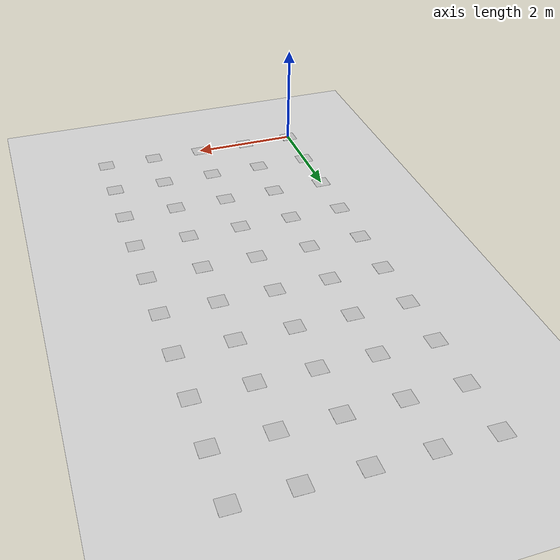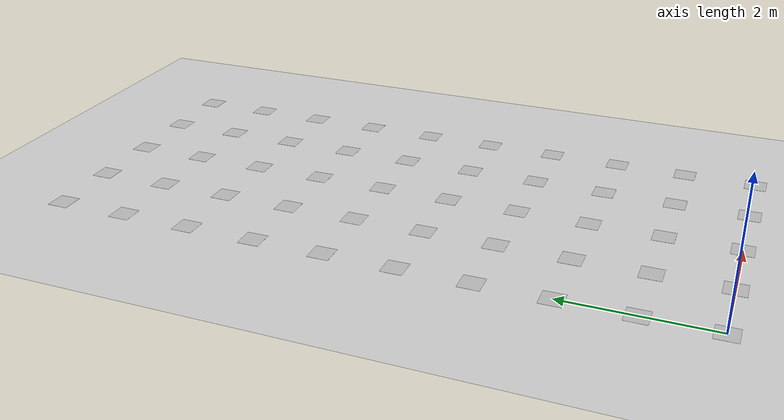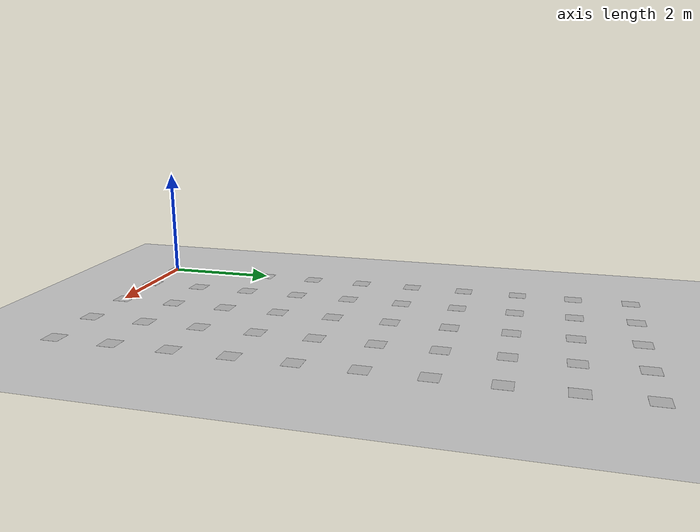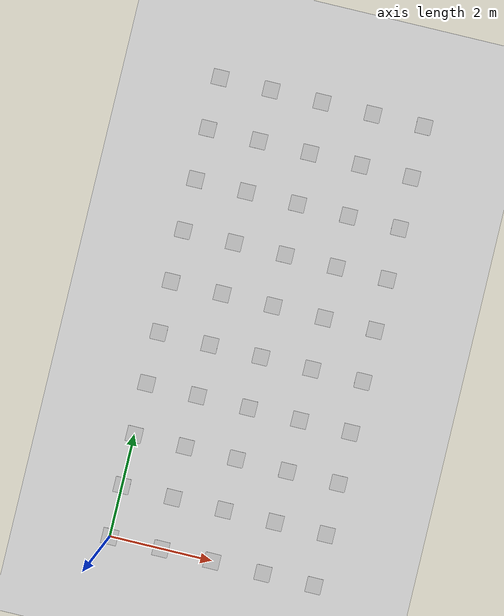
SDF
<sdf version="1.6">
 <world name="aruco_field">
  <include><uri>model://sun</uri></include>
  <include><uri>model://ground_plane</uri></include>
  <model name="aruco_marker_000">
   <static>true</static>
   <pose>0.0 0.0 0.001 0 0 0</pose>
   <link name="link">
    <visual name="visual">
     <geometry><box><size>0.3 0.3 0.001</size></box></geometry>
     <material>
      <script>
       <uri>model://aruco_models/materials/scripts</uri>
       <uri>model://aruco_models/materials/textures</uri>
       <name>Aruco/Material_000</name>
      </script>
     </material>
    </visual>
    <collision name="collision"><geometry><box><size>0.3 0.3 0.001</size></box></geometry></collision>
   </link>
  </model>
  <model name="aruco_marker_001">
   <static>true</static>
   <pose>1.0 0.0 0.001 0 0 0</pose>
   <link name="link">
    <visual name="visual">
     <geometry><box><size>0.3 0.3 0.001</size></box></geometry>
     <material>
      <script>
       <uri>model://aruco_models/materials/scripts</uri>
       <uri>model://aruco_models/materials/textures</uri>
       <name>Aruco/Material_001</name>
      </script>
     </material>
    </visual>
    <collision name="collision"><geometry><box><size>0.3 0.3 0.001</size></box></geometry></collision>
   </link>
  </model>
  <model name="aruco_marker_002">
   <static>true</static>
   <pose>2.0 0.0 0.001 0 0 0</pose>
   <link name="link">
    <visual name="visual">
     <geometry><box><size>0.3 0.3 0.001</size></box></geometry>
     <material>
      <script>
       <uri>model://aruco_models/materials/scripts</uri>
       <uri>model://aruco_models/materials/textures</uri>
       <name>Aruco/Material_002</name>
      </script>
     </material>
    </visual>
    <collision name="collision"><geometry><box><size>0.3 0.3 0.001</size></box></geometry></collision>
   </link>
  </model>
  <model name="aruco_marker_003">
   <static>true</static>
   <pose>3.0 0.0 0.001 0 0 0</pose>
   <link name="link">
    <visual name="visual">
     <geometry><box><size>0.3 0.3 0.001</size></box></geometry>
     <material>
      <script>
       <uri>model://aruco_models/materials/scripts</uri>
       <uri>model://aruco_models/materials/textures</uri>
       <name>Aruco/Material_003</name>
      </script>
     </material>
    </visual>
    <collision name="collision"><geometry><box><size>0.3 0.3 0.001</size></box></geometry></collision>
   </link>
  </model>
  <model name="aruco_marker_004">
   <static>true</static>
   <pose>4.0 0.0 0.001 0 0 0</pose>
   <link name="link">
    <visual name="visual">
     <geometry><box><size>0.3 0.3 0.001</size></box></geometry>
     <material>
      <script>
       <uri>model://aruco_models/materials/scripts</uri>
       <uri>model://aruco_models/materials/textures</uri>
       <name>Aruco/Material_004</name>
      </script>
     </material>
    </visual>
    <collision name="collision"><geometry><box><size>0.3 0.3 0.001</size></box></geometry></collision>
   </link>
  </model>
  <model name="aruco_marker_010">
   <static>true</static>
   <pose>0.0 1.0 0.001 0 0 0</pose>
   <link name="link">
    <visual name="visual">
     <geometry><box><size>0.3 0.3 0.001</size></box></geometry>
     <material>
      <script>
       <uri>model://aruco_models/materials/scripts</uri>
       <uri>model://aruco_models/materials/textures</uri>
       <name>Aruco/Material_010</name>
      </script>
     </material>
    </visual>
    <collision name="collision"><geometry><box><size>0.3 0.3 0.001</size></box></geometry></collision>
   </link>
  </model>
  <model name="aruco_marker_011">
   <static>true</static>
   <pose>1.0 1.0 0.001 0 0 0</pose>
   <link name="link">
    <visual name="visual">
     <geometry><box><size>0.3 0.3 0.001</size></box></geometry>
     <material>
      <script>
       <uri>model://aruco_models/materials/scripts</uri>
       <uri>model://aruco_models/materials/textures</uri>
       <name>Aruco/Material_011</name>
      </script>
     </material>
    </visual>
    <collision name="collision"><geometry><box><size>0.3 0.3 0.001</size></box></geometry></collision>
   </link>
  </model>
  <model name="aruco_marker_012">
   <static>true</static>
   <pose>2.0 1.0 0.001 0 0 0</pose>
   <link name="link">
    <visual name="visual">
     <geometry><box><size>0.3 0.3 0.001</size></box></geometry>
     <material>
      <script>
       <uri>model://aruco_models/materials/scripts</uri>
       <uri>model://aruco_models/materials/textures</uri>
       <name>Aruco/Material_012</name>
      </script>
     </material>
    </visual>
    <collision name="collision"><geometry><box><size>0.3 0.3 0.001</size></box></geometry></collision>
   </link>
  </model>
  <model name="aruco_marker_013">
   <static>true</static>
   <pose>3.0 1.0 0.001 0 0 0</pose>
   <link name="link">
    <visual name="visual">
     <geometry><box><size>0.3 0.3 0.001</size></box></geometry>
     <material>
      <script>
       <uri>model://aruco_models/materials/scripts</uri>
       <uri>model://aruco_models/materials/textures</uri>
       <name>Aruco/Material_013</name>
      </script>
     </material>
    </visual>
    <collision name="collision"><geometry><box><size>0.3 0.3 0.001</size></box></geometry></collision>
   </link>
  </model>
  <model name="aruco_marker_014">
   <static>true</static>
   <pose>4.0 1.0 0.001 0 0 0</pose>
   <link name="link">
    <visual name="visual">
     <geometry><box><size>0.3 0.3 0.001</size></box></geometry>
     <material>
      <script>
       <uri>model://aruco_models/materials/scripts</uri>
       <uri>model://aruco_models/materials/textures</uri>
       <name>Aruco/Material_014</name>
      </script>
     </material>
    </visual>
    <collision name="collision"><geometry><box><size>0.3 0.3 0.001</size></box></geometry></collision>
   </link>
  </model>
  <model name="aruco_marker_020">
   <static>true</static>
   <pose>0.0 2.0 0.001 0 0 0</pose>
   <link name="link">
    <visual name="visual">
     <geometry><box><size>0.3 0.3 0.001</size></box></geometry>
     <material>
      <script>
       <uri>model://aruco_models/materials/scripts</uri>
       <uri>model://aruco_models/materials/textures</uri>
       <name>Aruco/Material_020</name>
      </script>
     </material>
    </visual>
    <collision name="collision"><geometry><box><size>0.3 0.3 0.001</size></box></geometry></collision>
   </link>
  </model>
  <model name="aruco_marker_021">
   <static>true</static>
   <pose>1.0 2.0 0.001 0 0 0</pose>
   <link name="link">
    <visual name="visual">
     <geometry><box><size>0.3 0.3 0.001</size></box></geometry>
     <material>
      <script>
       <uri>model://aruco_models/materials/scripts</uri>
       <uri>model://aruco_models/materials/textures</uri>
       <name>Aruco/Material_021</name>
      </script>
     </material>
    </visual>
    <collision name="collision"><geometry><box><size>0.3 0.3 0.001</size></box></geometry></collision>
   </link>
  </model>
  <model name="aruco_marker_022">
   <static>true</static>
   <pose>2.0 2.0 0.001 0 0 0</pose>
   <link name="link">
    <visual name="visual">
     <geometry><box><size>0.3 0.3 0.001</size></box></geometry>
     <material>
      <script>
       <uri>model://aruco_models/materials/scripts</uri>
       <uri>model://aruco_models/materials/textures</uri>
       <name>Aruco/Material_022</name>
      </script>
     </material>
    </visual>
    <collision name="collision"><geometry><box><size>0.3 0.3 0.001</size></box></geometry></collision>
   </link>
  </model>
  <model name="aruco_marker_023">
   <static>true</static>
   <pose>3.0 2.0 0.001 0 0 0</pose>
   <link name="link">
    <visual name="visual">
     <geometry><box><size>0.3 0.3 0.001</size></box></geometry>
     <material>
      <script>
       <uri>model://aruco_models/materials/scripts</uri>
       <uri>model://aruco_models/materials/textures</uri>
       <name>Aruco/Material_023</name>
      </script>
     </material>
    </visual>
    <collision name="collision"><geometry><box><size>0.3 0.3 0.001</size></box></geometry></collision>
   </link>
  </model>
  <model name="aruco_marker_024">
   <static>true</static>
   <pose>4.0 2.0 0.001 0 0 0</pose>
   <link name="link">
    <visual name="visual">
     <geometry><box><size>0.3 0.3 0.001</size></box></geometry>
     <material>
      <script>
       <uri>model://aruco_models/materials/scripts</uri>
       <uri>model://aruco_models/materials/textures</uri>
       <name>Aruco/Material_024</name>
      </script>
     </material>
    </visual>
    <collision name="collision"><geometry><box><size>0.3 0.3 0.001</size></box></geometry></collision>
   </link>
  </model>
  <model name="aruco_marker_030">
   <static>true</static>
   <pose>0.0 3.0 0.001 0 0 0</pose>
   <link name="link">
    <visual name="visual">
     <geometry><box><size>0.3 0.3 0.001</size></box></geometry>
     <material>
      <script>
       <uri>model://aruco_models/materials/scripts</uri>
       <uri>model://aruco_models/materials/textures</uri>
       <name>Aruco/Material_030</name>
      </script>
     </material>
    </visual>
    <collision name="collision"><geometry><box><size>0.3 0.3 0.001</size></box></geometry></collision>
   </link>
  </model>
  <model name="aruco_marker_031">
   <static>true</static>
   <pose>1.0 3.0 0.001 0 0 0</pose>
   <link name="link">
    <visual name="visual">
     <geometry><box><size>0.3 0.3 0.001</size></box></geometry>
     <material>
      <script>
       <uri>model://aruco_models/materials/scripts</uri>
       <uri>model://aruco_models/materials/textures</uri>
       <name>Aruco/Material_031</name>
      </script>
     </material>
    </visual>
    <collision name="collision"><geometry><box><size>0.3 0.3 0.001</size></box></geometry></collision>
   </link>
  </model>
  <model name="aruco_marker_032">
   <static>true</static>
   <pose>2.0 3.0 0.001 0 0 0</pose>
   <link name="link">
    <visual name="visual">
     <geometry><box><size>0.3 0.3 0.001</size></box></geometry>
     <material>
      <script>
       <uri>model://aruco_models/materials/scripts</uri>
       <uri>model://aruco_models/materials/textures</uri>
       <name>Aruco/Material_032</name>
      </script>
     </material>
    </visual>
    <collision name="collision"><geometry><box><size>0.3 0.3 0.001</size></box></geometry></collision>
   </link>
  </model>
  <model name="aruco_marker_033">
   <static>true</static>
   <pose>3.0 3.0 0.001 0 0 0</pose>
   <link name="link">
    <visual name="visual">
     <geometry><box><size>0.3 0.3 0.001</size></box></geometry>
     <material>
      <script>
       <uri>model://aruco_models/materials/scripts</uri>
       <uri>model://aruco_models/materials/textures</uri>
       <name>Aruco/Material_033</name>
      </script>
     </material>
    </visual>
    <collision name="collision"><geometry><box><size>0.3 0.3 0.001</size></box></geometry></collision>
   </link>
  </model>
  <model name="aruco_marker_034">
   <static>true</static>
   <pose>4.0 3.0 0.001 0 0 0</pose>
   <link name="link">
    <visual name="visual">
     <geometry><box><size>0.3 0.3 0.001</size></box></geometry>
     <material>
      <script>
       <uri>model://aruco_models/materials/scripts</uri>
       <uri>model://aruco_models/materials/textures</uri>
       <name>Aruco/Material_034</name>
      </script>
     </material>
    </visual>
    <collision name="collision"><geometry><box><size>0.3 0.3 0.001</size></box></geometry></collision>
   </link>
  </model>
  <model name="aruco_marker_040">
   <static>true</static>
   <pose>0.0 4.0 0.001 0 0 0</pose>
   <link name="link">
    <visual name="visual">
     <geometry><box><size>0.3 0.3 0.001</size></box></geometry>
     <material>
      <script>
       <uri>model://aruco_models/materials/scripts</uri>
       <uri>model://aruco_models/materials/textures</uri>
       <name>Aruco/Material_040</name>
      </script>
     </material>
    </visual>
    <collision name="collision"><geometry><box><size>0.3 0.3 0.001</size></box></geometry></collision>
   </link>
  </model>
  <model name="aruco_marker_041">
   <static>true</static>
   <pose>1.0 4.0 0.001 0 0 0</pose>
   <link name="link">
    <visual name="visual">
     <geometry><box><size>0.3 0.3 0.001</size></box></geometry>
     <material>
      <script>
       <uri>model://aruco_models/materials/scripts</uri>
       <uri>model://aruco_models/materials/textures</uri>
       <name>Aruco/Material_041</name>
      </script>
     </material>
    </visual>
    <collision name="collision"><geometry><box><size>0.3 0.3 0.001</size></box></geometry></collision>
   </link>
  </model>
  <model name="aruco_marker_042">
   <static>true</static>
   <pose>2.0 4.0 0.001 0 0 0</pose>
   <link name="link">
    <visual name="visual">
     <geometry><box><size>0.3 0.3 0.001</size></box></geometry>
     <material>
      <script>
       <uri>model://aruco_models/materials/scripts</uri>
       <uri>model://aruco_models/materials/textures</uri>
       <name>Aruco/Material_042</name>
      </script>
     </material>
    </visual>
    <collision name="collision"><geometry><box><size>0.3 0.3 0.001</size></box></geometry></collision>
   </link>
  </model>
  <model name="aruco_marker_043">
   <static>true</static>
   <pose>3.0 4.0 0.001 0 0 0</pose>
   <link name="link">
    <visual name="visual">
     <geometry><box><size>0.3 0.3 0.001</size></box></geometry>
     <material>
      <script>
       <uri>model://aruco_models/materials/scripts</uri>
       <uri>model://aruco_models/materials/textures</uri>
       <name>Aruco/Material_043</name>
      </script>
     </material>
    </visual>
    <collision name="collision"><geometry><box><size>0.3 0.3 0.001</size></box></geometry></collision>
   </link>
  </model>
  <model name="aruco_marker_044">
   <static>true</static>
   <pose>4.0 4.0 0.001 0 0 0</pose>
   <link name="link">
    <visual name="visual">
     <geometry><box><size>0.3 0.3 0.001</size></box></geometry>
     <material>
      <script>
       <uri>model://aruco_models/materials/scripts</uri>
       <uri>model://aruco_models/materials/textures</uri>
       <name>Aruco/Material_044</name>
      </script>
     </material>
    </visual>
    <collision name="collision"><geometry><box><size>0.3 0.3 0.001</size></box></geometry></collision>
   </link>
  </model>
  <model name="aruco_marker_050">
   <static>true</static>
   <pose>0.0 5.0 0.001 0 0 0</pose>
   <link name="link">
    <visual name="visual">
     <geometry><box><size>0.3 0.3 0.001</size></box></geometry>
     <material>
      <script>
       <uri>model://aruco_models/materials/scripts</uri>
       <uri>model://aruco_models/materials/textures</uri>
       <name>Aruco/Material_050</name>
      </script>
     </material>
    </visual>
    <collision name="collision"><geometry><box><size>0.3 0.3 0.001</size></box></geometry></collision>
   </link>
  </model>
  <model name="aruco_marker_051">
   <static>true</static>
   <pose>1.0 5.0 0.001 0 0 0</pose>
   <link name="link">
    <visual name="visual">
     <geometry><box><size>0.3 0.3 0.001</size></box></geometry>
     <material>
      <script>
       <uri>model://aruco_models/materials/scripts</uri>
       <uri>model://aruco_models/materials/textures</uri>
       <name>Aruco/Material_051</name>
      </script>
     </material>
    </visual>
    <collision name="collision"><geometry><box><size>0.3 0.3 0.001</size></box></geometry></collision>
   </link>
  </model>
  <model name="aruco_marker_052">
   <static>true</static>
   <pose>2.0 5.0 0.001 0 0 0</pose>
   <link name="link">
    <visual name="visual">
     <geometry><box><size>0.3 0.3 0.001</size></box></geometry>
     <material>
      <script>
       <uri>model://aruco_models/materials/scripts</uri>
       <uri>model://aruco_models/materials/textures</uri>
       <name>Aruco/Material_052</name>
      </script>
     </material>
    </visual>
    <collision name="collision"><geometry><box><size>0.3 0.3 0.001</size></box></geometry></collision>
   </link>
  </model>
  <model name="aruco_marker_053">
   <static>true</static>
   <pose>3.0 5.0 0.001 0 0 0</pose>
   <link name="link">
    <visual name="visual">
     <geometry><box><size>0.3 0.3 0.001</size></box></geometry>
     <material>
      <script>
       <uri>model://aruco_models/materials/scripts</uri>
       <uri>model://aruco_models/materials/textures</uri>
       <name>Aruco/Material_053</name>
      </script>
     </material>
    </visual>
    <collision name="collision"><geometry><box><size>0.3 0.3 0.001</size></box></geometry></collision>
   </link>
  </model>
  <model name="aruco_marker_054">
   <static>true</static>
   <pose>4.0 5.0 0.001 0 0 0</pose>
   <link name="link">
    <visual name="visual">
     <geometry><box><size>0.3 0.3 0.001</size></box></geometry>
     <material>
      <script>
       <uri>model://aruco_models/materials/scripts</uri>
       <uri>model://aruco_models/materials/textures</uri>
       <name>Aruco/Material_054</name>
      </script>
     </material>
    </visual>
    <collision name="collision"><geometry><box><size>0.3 0.3 0.001</size></box></geometry></collision>
   </link>
  </model>
  <model name="aruco_marker_060">
   <static>true</static>
   <pose>0.0 6.0 0.001 0 0 0</pose>
   <link name="link">
    <visual name="visual">
     <geometry><box><size>0.3 0.3 0.001</size></box></geometry>
     <material>
      <script>
       <uri>model://aruco_models/materials/scripts</uri>
       <uri>model://aruco_models/materials/textures</uri>
       <name>Aruco/Material_060</name>
      </script>
     </material>
    </visual>
    <collision name="collision"><geometry><box><size>0.3 0.3 0.001</size></box></geometry></collision>
   </link>
  </model>
  <model name="aruco_marker_061">
   <static>true</static>
   <pose>1.0 6.0 0.001 0 0 0</pose>
   <link name="link">
    <visual name="visual">
     <geometry><box><size>0.3 0.3 0.001</size></box></geometry>
     <material>
      <script>
       <uri>model://aruco_models/materials/scripts</uri>
       <uri>model://aruco_models/materials/textures</uri>
       <name>Aruco/Material_061</name>
      </script>
     </material>
    </visual>
    <collision name="collision"><geometry><box><size>0.3 0.3 0.001</size></box></geometry></collision>
   </link>
  </model>
  <model name="aruco_marker_062">
   <static>true</static>
   <pose>2.0 6.0 0.001 0 0 0</pose>
   <link name="link">
    <visual name="visual">
     <geometry><box><size>0.3 0.3 0.001</size></box></geometry>
     <material>
      <script>
       <uri>model://aruco_models/materials/scripts</uri>
       <uri>model://aruco_models/materials/textures</uri>
       <name>Aruco/Material_062</name>
      </script>
     </material>
    </visual>
    <collision name="collision"><geometry><box><size>0.3 0.3 0.001</size></box></geometry></collision>
   </link>
  </model>
  <model name="aruco_marker_063">
   <static>true</static>
   <pose>3.0 6.0 0.001 0 0 0</pose>
   <link name="link">
    <visual name="visual">
     <geometry><box><size>0.3 0.3 0.001</size></box></geometry>
     <material>
      <script>
       <uri>model://aruco_models/materials/scripts</uri>
       <uri>model://aruco_models/materials/textures</uri>
       <name>Aruco/Material_063</name>
      </script>
     </material>
    </visual>
    <collision name="collision"><geometry><box><size>0.3 0.3 0.001</size></box></geometry></collision>
   </link>
  </model>
  <model name="aruco_marker_064">
   <static>true</static>
   <pose>4.0 6.0 0.001 0 0 0</pose>
   <link name="link">
    <visual name="visual">
     <geometry><box><size>0.3 0.3 0.001</size></box></geometry>
     <material>
      <script>
       <uri>model://aruco_models/materials/scripts</uri>
       <uri>model://aruco_models/materials/textures</uri>
       <name>Aruco/Material_064</name>
      </script>
     </material>
    </visual>
    <collision name="collision"><geometry><box><size>0.3 0.3 0.001</size></box></geometry></collision>
   </link>
  </model>
  <model name="aruco_marker_070">
   <static>true</static>
   <pose>0.0 7.0 0.001 0 0 0</pose>
   <link name="link">
    <visual name="visual">
     <geometry><box><size>0.3 0.3 0.001</size></box></geometry>
     <material>
      <script>
       <uri>model://aruco_models/materials/scripts</uri>
       <uri>model://aruco_models/materials/textures</uri>
       <name>Aruco/Material_070</name>
      </script>
     </material>
    </visual>
    <collision name="collision"><geometry><box><size>0.3 0.3 0.001</size></box></geometry></collision>
   </link>
  </model>
  <model name="aruco_marker_071">
   <static>true</static>
   <pose>1.0 7.0 0.001 0 0 0</pose>
   <link name="link">
    <visual name="visual">
     <geometry><box><size>0.3 0.3 0.001</size></box></geometry>
     <material>
      <script>
       <uri>model://aruco_models/materials/scripts</uri>
       <uri>model://aruco_models/materials/textures</uri>
       <name>Aruco/Material_071</name>
      </script>
     </material>
    </visual>
    <collision name="collision"><geometry><box><size>0.3 0.3 0.001</size></box></geometry></collision>
   </link>
  </model>
  <model name="aruco_marker_072">
   <static>true</static>
   <pose>2.0 7.0 0.001 0 0 0</pose>
   <link name="link">
    <visual name="visual">
     <geometry><box><size>0.3 0.3 0.001</size></box></geometry>
     <material>
      <script>
       <uri>model://aruco_models/materials/scripts</uri>
       <uri>model://aruco_models/materials/textures</uri>
       <name>Aruco/Material_072</name>
      </script>
     </material>
    </visual>
    <collision name="collision"><geometry><box><size>0.3 0.3 0.001</size></box></geometry></collision>
   </link>
  </model>
  <model name="aruco_marker_073">
   <static>true</static>
   <pose>3.0 7.0 0.001 0 0 0</pose>
   <link name="link">
    <visual name="visual">
     <geometry><box><size>0.3 0.3 0.001</size></box></geometry>
     <material>
      <script>
       <uri>model://aruco_models/materials/scripts</uri>
       <uri>model://aruco_models/materials/textures</uri>
       <name>Aruco/Material_073</name>
      </script>
     </material>
    </visual>
    <collision name="collision"><geometry><box><size>0.3 0.3 0.001</size></box></geometry></collision>
   </link>
  </model>
  <model name="aruco_marker_074">
   <static>true</static>
   <pose>4.0 7.0 0.001 0 0 0</pose>
   <link name="link">
    <visual name="visual">
     <geometry><box><size>0.3 0.3 0.001</size></box></geometry>
     <material>
      <script>
       <uri>model://aruco_models/materials/scripts</uri>
       <uri>model://aruco_models/materials/textures</uri>
       <name>Aruco/Material_074</name>
      </script>
     </material>
    </visual>
    <collision name="collision"><geometry><box><size>0.3 0.3 0.001</size></box></geometry></collision>
   </link>
  </model>
  <model name="aruco_marker_080">
   <static>true</static>
   <pose>0.0 8.0 0.001 0 0 0</pose>
   <link name="link">
    <visual name="visual">
     <geometry><box><size>0.3 0.3 0.001</size></box></geometry>
     <material>
      <script>
       <uri>model://aruco_models/materials/scripts</uri>
       <uri>model://aruco_models/materials/textures</uri>
       <name>Aruco/Material_080</name>
      </script>
     </material>
    </visual>
    <collision name="collision"><geometry><box><size>0.3 0.3 0.001</size></box></geometry></collision>
   </link>
  </model>
  <model name="aruco_marker_081">
   <static>true</static>
   <pose>1.0 8.0 0.001 0 0 0</pose>
   <link name="link">
    <visual name="visual">
     <geometry><box><size>0.3 0.3 0.001</size></box></geometry>
     <material>
      <script>
       <uri>model://aruco_models/materials/scripts</uri>
       <uri>model://aruco_models/materials/textures</uri>
       <name>Aruco/Material_081</name>
      </script>
     </material>
    </visual>
    <collision name="collision"><geometry><box><size>0.3 0.3 0.001</size></box></geometry></collision>
   </link>
  </model>
  <model name="aruco_marker_082">
   <static>true</static>
   <pose>2.0 8.0 0.001 0 0 0</pose>
   <link name="link">
    <visual name="visual">
     <geometry><box><size>0.3 0.3 0.001</size></box></geometry>
     <material>
      <script>
       <uri>model://aruco_models/materials/scripts</uri>
       <uri>model://aruco_models/materials/textures</uri>
       <name>Aruco/Material_082</name>
      </script>
     </material>
    </visual>
    <collision name="collision"><geometry><box><size>0.3 0.3 0.001</size></box></geometry></collision>
   </link>
  </model>
  <model name="aruco_marker_083">
   <static>true</static>
   <pose>3.0 8.0 0.001 0 0 0</pose>
   <link name="link">
    <visual name="visual">
     <geometry><box><size>0.3 0.3 0.001</size></box></geometry>
     <material>
      <script>
       <uri>model://aruco_models/materials/scripts</uri>
       <uri>model://aruco_models/materials/textures</uri>
       <name>Aruco/Material_083</name>
      </script>
     </material>
    </visual>
    <collision name="collision"><geometry><box><size>0.3 0.3 0.001</size></box></geometry></collision>
   </link>
  </model>
  <model name="aruco_marker_084">
   <static>true</static>
   <pose>4.0 8.0 0.001 0 0 0</pose>
   <link name="link">
    <visual name="visual">
     <geometry><box><size>0.3 0.3 0.001</size></box></geometry>
     <material>
      <script>
       <uri>model://aruco_models/materials/scripts</uri>
       <uri>model://aruco_models/materials/textures</uri>
       <name>Aruco/Material_084</name>
      </script>
     </material>
    </visual>
    <collision name="collision"><geometry><box><size>0.3 0.3 0.001</size></box></geometry></collision>
   </link>
  </model>
  <model name="aruco_marker_090">
   <static>true</static>
   <pose>0.0 9.0 0.001 0 0 0</pose>
   <link name="link">
    <visual name="visual">
     <geometry><box><size>0.3 0.3 0.001</size></box></geometry>
     <material>
      <script>
       <uri>model://aruco_models/materials/scripts</uri>
       <uri>model://aruco_models/materials/textures</uri>
       <name>Aruco/Material_090</name>
      </script>
     </material>
    </visual>
    <collision name="collision"><geometry><box><size>0.3 0.3 0.001</size></box></geometry></collision>
   </link>
  </model>
  <model name="aruco_marker_091">
   <static>true</static>
   <pose>1.0 9.0 0.001 0 0 0</pose>
   <link name="link">
    <visual name="visual">
     <geometry><box><size>0.3 0.3 0.001</size></box></geometry>
     <material>
      <script>
       <uri>model://aruco_models/materials/scripts</uri>
       <uri>model://aruco_models/materials/textures</uri>
       <name>Aruco/Material_091</name>
      </script>
     </material>
    </visual>
    <collision name="collision"><geometry><box><size>0.3 0.3 0.001</size></box></geometry></collision>
   </link>
  </model>
  <model name="aruco_marker_092">
   <static>true</static>
   <pose>2.0 9.0 0.001 0 0 0</pose>
   <link name="link">
    <visual name="visual">
     <geometry><box><size>0.3 0.3 0.001</size></box></geometry>
     <material>
      <script>
       <uri>model://aruco_models/materials/scripts</uri>
       <uri>model://aruco_models/materials/textures</uri>
       <name>Aruco/Material_092</name>
      </script>
     </material>
    </visual>
    <collision name="collision"><geometry><box><size>0.3 0.3 0.001</size></box></geometry></collision>
   </link>
  </model>
  <model name="aruco_marker_093">
   <static>true</static>
   <pose>3.0 9.0 0.001 0 0 0</pose>
   <link name="link">
    <visual name="visual">
     <geometry><box><size>0.3 0.3 0.001</size></box></geometry>
     <material>
      <script>
       <uri>model://aruco_models/materials/scripts</uri>
       <uri>model://aruco_models/materials/textures</uri>
       <name>Aruco/Material_093</name>
      </script>
     </material>
    </visual>
    <collision name="collision"><geometry><box><size>0.3 0.3 0.001</size></box></geometry></collision>
   </link>
  </model>
  <model name="aruco_marker_094">
   <static>true</static>
   <pose>4.0 9.0 0.001 0 0 0</pose>
   <link name="link">
    <visual name="visual">
     <geometry><box><size>0.3 0.3 0.001</size></box></geometry>
     <material>
      <script>
       <uri>model://aruco_models/materials/scripts</uri>
       <uri>model://aruco_models/materials/textures</uri>
       <name>Aruco/Material_094</name>
      </script>
     </material>
    </visual>
    <collision name="collision"><geometry><box><size>0.3 0.3 0.001</size></box></geometry></collision>
   </link>
  </model>
 </world>
</sdf>
